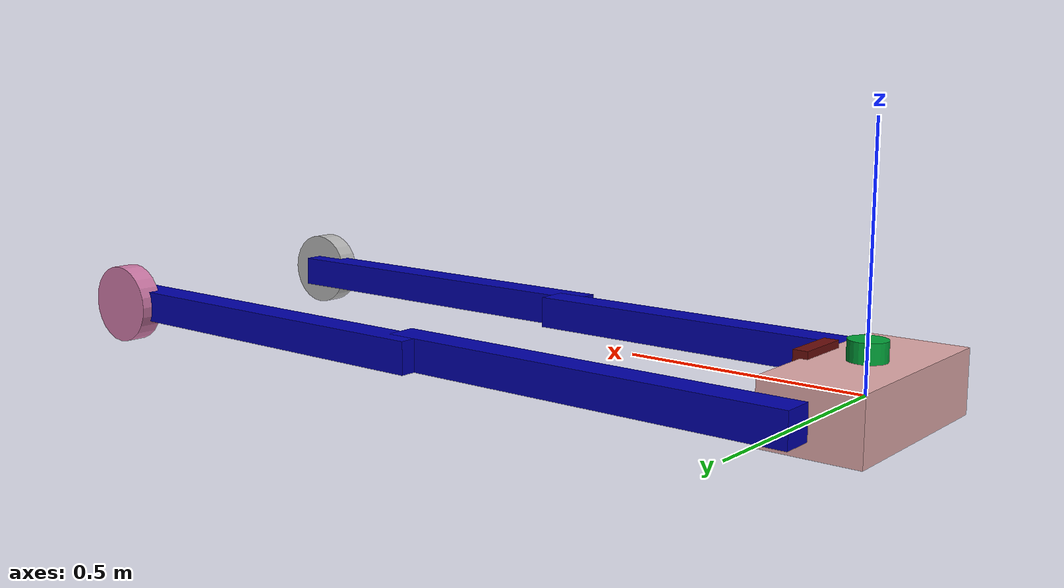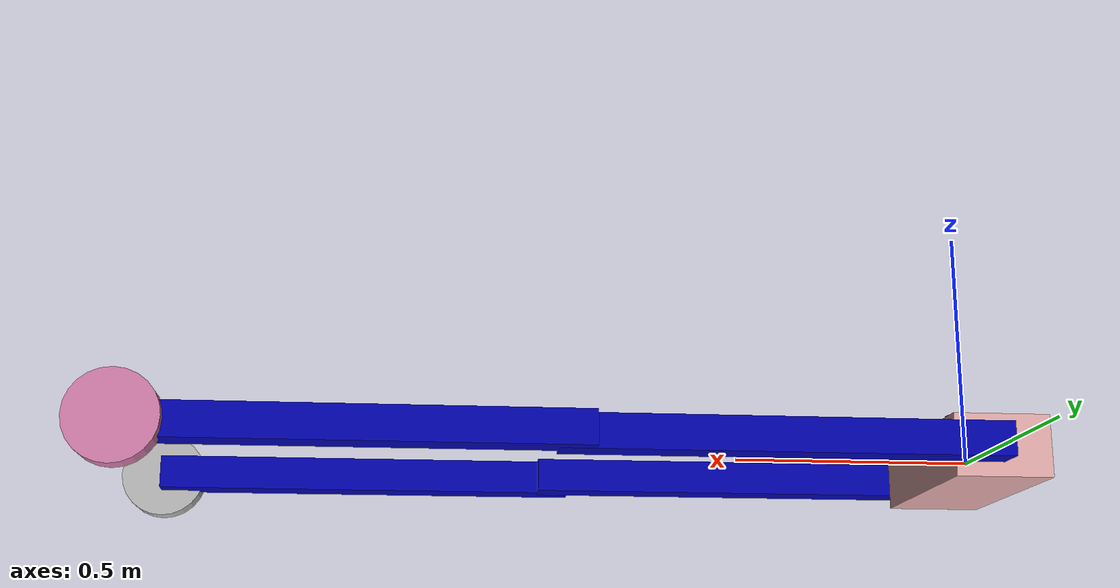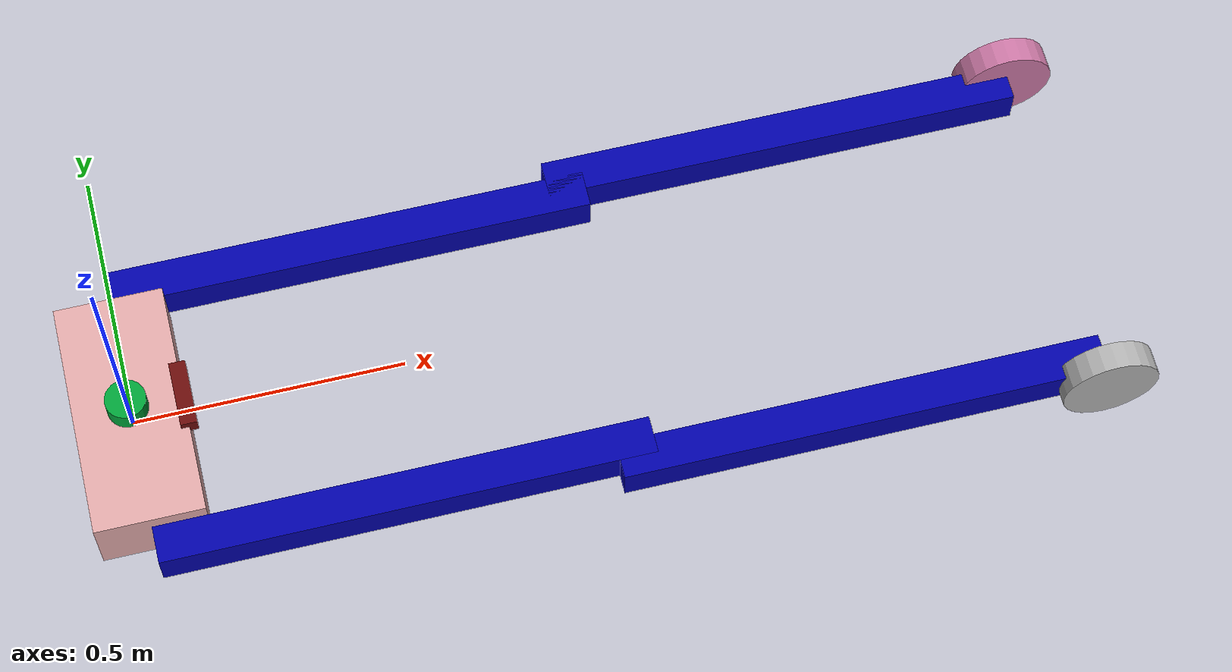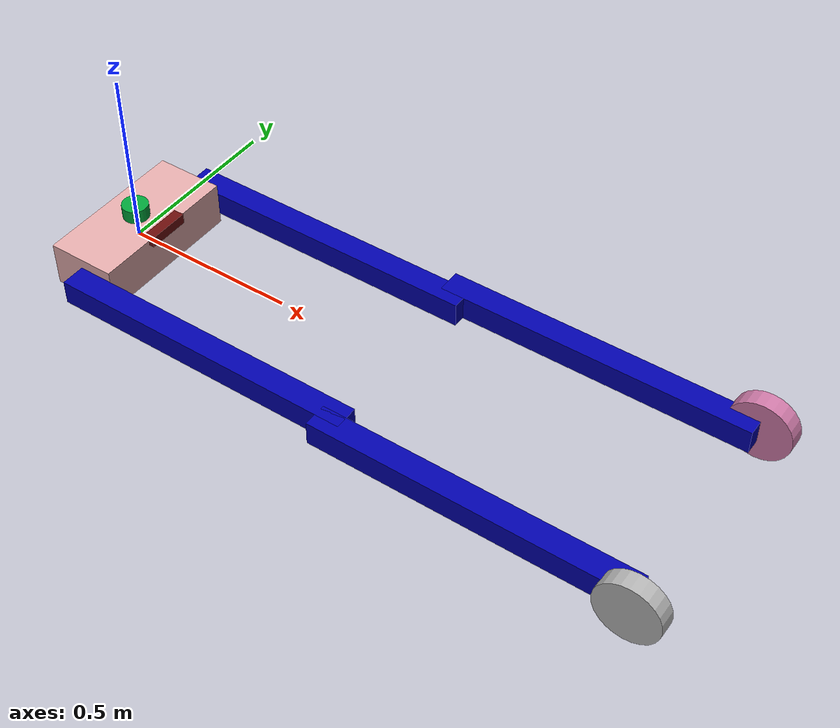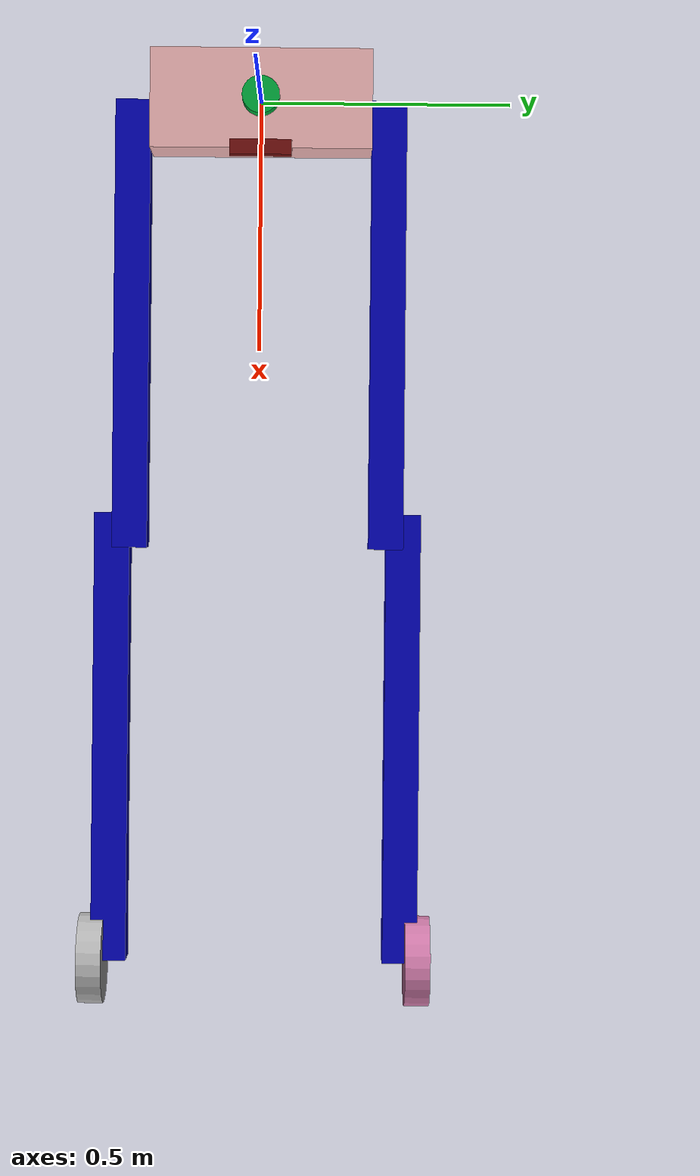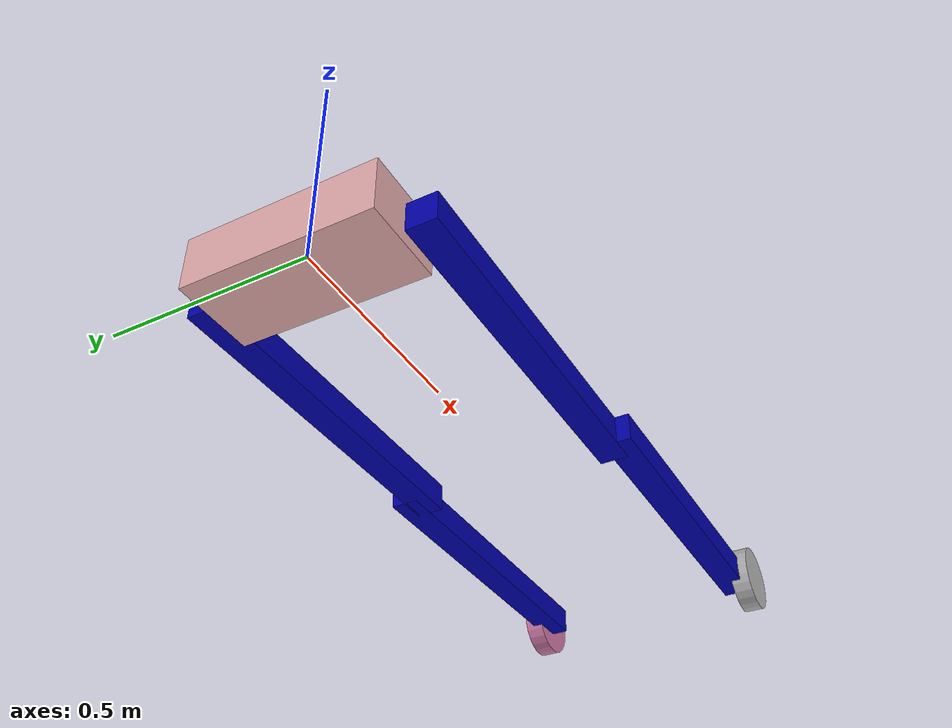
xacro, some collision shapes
<?xml version="1.0"?>
<robot name="arc" xmlns:xacro="http://ros.org/wiki/xacro">

    <!-- INCLUDE -->
    <xacro:include filename="$(find arc_description)/urdf/declaration.urdf.xacro" />
    <xacro:include filename="$(find arc_description)/urdf/mechanic_part/thigh.urdf.xacro" />
    <xacro:include filename="$(find arc_description)/urdf/mechanic_part/knee.urdf.xacro" />
    <xacro:include filename="$(find arc_description)/urdf/mechanic_part/base.urdf.xacro" />
    <xacro:include filename="$(find arc_description)/urdf/mechanic_part/wheel.urdf.xacro" />
    <xacro:include filename="$(find arc_description)/urdf/sensors/plugins.urdf.xacro" />
    <xacro:include filename="$(find arc_description)/urdf/sensors/imu.urdf.xacro" />
    <xacro:include filename="$(find arc_description)/urdf/sensors/lidar.urdf.xacro" />
    <xacro:include filename="$(find arc_description)/urdf/sensors/camera.urdf.xacro" />
    <xacro:include filename="$(find arc_description)/urdf/controller/ros2_control.urdf.xacro" />
    <xacro:include filename="$(find arc_description)/urdf/controller/diff_drive.urdf.xacro" />

    <!-- FUNCTION(SETUP) -->
    <xacro:arc_ros2_control />
    <xacro:arc_diff_drive_control />
    <xacro:base
        length="${base_length}"
        width="${base_width}"
        height="${base_height}"
        mass="${base_mass}"
    />

    <xacro:thigh
        frame_id="left_thigh"
        parent="base_link"
        pos_x="${thigh_pos_x}"
        pos_y="${thigh_pos_y}"
        pos_z="${thigh_pos_z}"
        length="${thigh_length}"
        width="${thigh_width}"
        height="${thigh_height}"
        mass=".6" />

    <xacro:thigh
        frame_id="right_thigh"
        parent="base_link"
        pos_x="${thigh_pos_x}"
        pos_y="${-thigh_pos_y}"
        pos_z="${thigh_pos_z}"
        length="${thigh_length}"
        width="${thigh_width}"
        height="${thigh_height}"
        mass=".6" />

    <xacro:knee
        frame_id="left_knee"
        parent="left_thigh"
        pos_x="${(thigh_length+(thigh_length/2))-thigh_width}"
        pos_y="${thigh_width/2}"
        pos_z="0"
        length="${thigh_length}"
        width="${thigh_width}"
        height="${thigh_height}"
        mass=".6" />

    <xacro:knee
        frame_id="right_knee"
        parent="right_thigh"
        pos_x="${(thigh_length+(thigh_length/2))-thigh_width}"
        pos_y="${-thigh_width/2}"
        pos_z="0"
        length="${thigh_length}"
        width="${thigh_width}"
        height="${thigh_height}"
        mass=".6" />

    <xacro:wheel
        side="left"
        parent="left_knee_joint_link"
        radius="${wheel_radius}"
        width="${wheel_width}"
        pos_x="${thigh_length}"
        pos_y="${thigh_width/2}"
        pos_z="0"
        mass="${wheel_mass}"
    />

    <xacro:wheel
        side="right"
        parent="right_knee_joint_link"
        radius="${wheel_radius}"
        width="${wheel_width}"
        pos_x="${thigh_length}"
        pos_y="${-thigh_width/2}"
        pos_z="0"
        mass="${wheel_mass}"
    />

    <xacro:depth_sensor name="eye">
        <origin xyz="${base_length/2} 0 ${base_height/2}" rpy="0 0 0" />
    </xacro:depth_sensor>

    <xacro:laser
        name="lidar"
        parent ="base_link"
        update_rate="10"
        ray_count="64"
        min_angle="-1.39626340159"
        max_angle="1.39626340159"
        min_range="0.1"
        max_range="10.0"
        frame_id="lidar_link"
        topic_name="/scan">
        <origin xyz="0 0 ${(base_height/2) -  0.025 }" rpy="0 0 0" />
    </xacro:laser>
    <xacro:imu />
</robot>

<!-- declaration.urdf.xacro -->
<robot name="arc" xmlns:xacro="http://ros.org/wiki/xacro">

    <!-- DECLARATION -->

    <xacro:property name="base_length" value="0.200" />
    <xacro:property name="base_width" value="0.445" />
    <xacro:property name="base_height" value="0.129" />
    <xacro:property name="base_mass" value="10" />

    <xacro:property name="wheel_radius" value="0.09" />
    <xacro:property name="wheel_width" value="0.05" />
    <xacro:property name="wheel_mass" value=".6" />
    <xacro:property name="wheel_torque" value="20" />

    <xacro:property name="thigh_length" value="0.9" />
    <xacro:property name="thigh_width" value="0.07" />
    <xacro:property name="thigh_height" value="0.07" />
    <xacro:property name="thigh_pos_x" value="${thigh_length/2}" />
    <xacro:property name="thigh_pos_y" value="${(base_width/2) + (thigh_width/2)}" />
    <xacro:property name="thigh_pos_z" value="0" />

</robot>

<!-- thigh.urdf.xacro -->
<robot xmlns:xacro="http://ros.org/wiki/xacro">
    <xacro:macro name="thigh" params="frame_id parent pos_x pos_y pos_z length width height mass">

        <!-- LINK -->
        <link name="${frame_id}_joint_link">

            <visual>
                <!-- Geometry centered on link frame -->
                <origin xyz="${length/2} 0 0" rpy="${pi/2} 0 0" />
                <geometry>
                    <box size="${length} ${width} ${height}" />
                </geometry>
                <material name="yellow">
                    <color rgba="0.0 0.0 0.6627 1.0" />
                </material>
            </visual>

            <collision>
                <origin xyz="${length/2} 0 0" rpy="0 0 0" />
                <geometry>
                    <box size="${length} ${width} ${height}" />
                </geometry>
            </collision>

            <inertial>
                <origin xyz="${length/2} 0 0" rpy="0 0 0" />
                <mass value="${mass}" />
                <inertia
                    ixx="${(1.0/12.0) * mass * ((width*width) + (height*height))}"
                    ixy="0.0"
                    ixz="0.0"
                    iyy="${(1.0/12.0) * mass * ((length*length) + (height*height))}"
                    iyz="0.0"
                    izz="${(1.0/12.0) * mass * ((length*length) + (width*width))}" />
            </inertial>

        </link>

        <!-- GAZEBO MATERIAL (correct reference) -->
        <gazebo reference="${frame_id}_joint_link">
            <material>Gazebo/Yellow</material>
        </gazebo>

        <!-- JOINT -->
        <joint name="${frame_id}_joint" type="revolute">
            <parent link="${parent}" />
            <child link="${frame_id}_joint_link" />
            <origin xyz="${pos_x - (length/2)} ${pos_y} ${pos_z}" rpy="0 0 0" />
            <axis xyz="0 1 0" />
            <limit lower="0.0"
                upper="3.14"
                effort="100"
                velocity="5.0" />
        </joint>

    </xacro:macro>

</robot>

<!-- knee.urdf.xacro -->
<robot xmlns:xacro="http://ros.org/wiki/xacro">
    <xacro:macro name="knee" params="frame_id parent pos_x pos_y pos_z length width height mass">

        <!-- LINK -->
        <link name="${frame_id}_joint_link">

            <visual>
                <!-- Geometry centered on link frame -->
                <origin xyz="${length/2} 0 0" rpy="${pi/2} 0 0" />
                <geometry>
                    <box size="${length} ${width} ${height}" />
                </geometry>
                <material name="yellow">
                    <color rgba="0.0 0.0 0.6627 1.0" />
                </material>
            </visual>

            <collision>
                <origin xyz="${length/2} 0 0" rpy="0 0 0" />
                <geometry>
                    <box size="${length} ${width} ${height}" />
                </geometry>
            </collision>

            <inertial>
                <origin xyz="${length/2} 0 0" rpy="0 0 0" />
                <mass value="${mass}" />
                <inertia
                    ixx="${(1.0/12.0) * mass * ((width*width) + (height*height))}"
                    ixy="0.0"
                    ixz="0.0"
                    iyy="${(1.0/12.0) * mass * ((length*length) + (height*height))}"
                    iyz="0.0"
                    izz="${(1.0/12.0) * mass * ((length*length) + (width*width))}" />
            </inertial>

        </link>

        <!-- GAZEBO MATERIAL (correct reference) -->
        <gazebo reference="${frame_id}_joint_link">
            <material>Gazebo/Yellow</material>
        </gazebo>

        <!-- JOINT -->
        <joint name="${frame_id}_joint" type="revolute">
            <parent link="${parent}_joint_link" />
            <child link="${frame_id}_joint_link" />
            <origin xyz="${pos_x - (length/2)} ${pos_y} ${pos_z}" rpy="0 0 0" />
            <axis xyz="0 1 0" />
            <limit lower="-3.14"
                upper="1.57"
                effort="100"
                velocity="5.0" />
        </joint>

    </xacro:macro>

</robot>

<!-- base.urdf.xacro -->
<robot xmlns:xacro="http://ros.org/wiki/xacro">

    <xacro:macro name="base" params="length width height mass">
        <link name="base_footprint" />

        <link name="base_link">
            <visual>
                <origin xyz="0 0 0" rpy="0 0 0" />
                <geometry>
                    <box size="${length} ${width} ${height}" />
                </geometry>
                <material name="yellow">
                    <color rgba="0.8784 0.6627 0.6627 1.0" />
                </material>
            </visual>

            <collision>
                <origin xyz="0 0 0" rpy="0 0 0" />
                <geometry>
                    <box size="${length} ${width} ${height}" />
                </geometry>
            </collision>

            <inertial>
                <origin xyz="0 0 0" rpy="0 0 0" />
                <mass value="${mass}" />
                <inertia ixx="${(1/12) * mass * ((width  * width)  + (height * height))}" ixy="0.0"
                    ixz="0.0"
                    iyy="${(1/12) * mass * ((length * length) + (height * height))}" iyz="0.0"
                    izz="${(1/12) * mass * ((length * length) + (width  * width))}" />
            </inertial>
        </link>

        <gazebo reference="base_link">
            <visual>
                <material>
                    <ambient>0.8392 0.6314 0.0 1.0</ambient>
                    <diffuse>0.8392 0.6314 0.0 1.0</diffuse>
                    <specular>0.99 0.99 0.99 1.0</specular>
                    <emissive>0.0 0.0 0.0 0.0</emissive>
                </material>
            </visual>
        </gazebo>

        <joint name="base_to_footprint" type="fixed">
            <parent link="base_footprint" />
            <child link="base_link" />
            <origin xyz="0 0 0" rpy="0 0 0" />
        </joint>
    </xacro:macro>

</robot>

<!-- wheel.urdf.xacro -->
<robot xmlns:xacro="http://ros.org/wiki/xacro">

    <xacro:macro name="wheel" params="side parent radius width pos_x pos_y pos_z mass">
        <link name="${side}_wheel_link">
            <visual>
                <origin xyz="0 0 0" rpy="${pi/2} 0 0" />
                <geometry>
                    <mesh filename="file://$(find arc_description)/meshes/tire.dae" scale="4 4 4" />
                </geometry>
            </visual>

            <collision>
                <origin xyz="0 0 0" rpy="${pi/2} 0 0" />
                <geometry>
                    <cylinder radius="${radius}" length="${width}" />
                </geometry>
            </collision>

            <inertial>
                <origin xyz="0 0 0" rpy="0 0 0" />
                <mass value="${mass}" />
                <inertia ixx="${(2/5) * mass * (radius * radius)}" ixy="0" ixz="0"
                    iyy="${(2/5) * mass * (radius * radius)}" iyz="0"
                    izz="${(2/5) * mass * (radius * radius)}" />
            </inertial>
        </link>

        <gazebo reference="${side}_wheel_link">
            <visual>
                <material>gazebo/Gray</material>
            </visual>
        </gazebo>
        <joint name="${side}_wheel_joint" type="continuous">
            <axis xyz="0 1 0" />
            <parent link="${parent}" />
            <child link="${side}_wheel_link" />
            <origin xyz="${pos_x} ${pos_y} ${pos_z}" rpy="0 0 0" />
        </joint>
    </xacro:macro>
</robot>

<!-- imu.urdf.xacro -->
<robot xmlns:xacro="http://ros.org/wiki/xacro">
    <xacro:macro name="imu">
        <link name="imu_link" />

        <joint name="imu_to_base_link" type="fixed">
            <parent link="base_link" />
            <child link="imu_link" />
            <origin xyz="0 0 0" rpy="0 0 0" />
        </joint>

        <gazebo>
            <plugin filename="gz-sim-imu-system" name="gz::sim::systems::Imu">
            </plugin>
        </gazebo>

        <gazebo reference="imu_link">
            <sensor name="imu_sensor" type="imu">
                <topic>imu/data</topic>
                <update_rate>50</update_rate>
                <always_on>true</always_on>
                <visualize>true</visualize>
            </sensor>
        </gazebo>
    </xacro:macro>
</robot>

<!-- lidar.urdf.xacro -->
<robot xmlns:xacro="http://ros.org/wiki/xacro">
    <xacro:property name="M_PI" value="3.1415926535897931" />
    <xacro:macro name="laser"
        params="name parent *origin update_rate ray_count min_angle max_angle min_range max_range frame_id topic_name">
        <link name="${frame_id}">
            <visual>
                <xacro:insert_block name="origin" />
                <geometry>
                    <cylinder radius="0.0375" length="0.05" />
                </geometry>
                <material name="green">
                    <color rgba="0.003 0.639 0.223 1.0" />
                </material>
            </visual>

            <collision>
                <xacro:insert_block name="origin" />
                <geometry>
                    <cylinder radius="0.0375" length="0.05" />
                </geometry>
            </collision>

            <inertial>
                <origin xyz="0 0 0" rpy="0 0 0" />
                <mass value="0.1" />
                <inertia ixx="${(2/5) * 0.1 * (0.0375 * 0.0375)}" ixy="0" ixz="0"
                    iyy="${(2/5) * 0.1 * (0.0375 * 0.0375)}" iyz="0"
                    izz="${(2/5) * 0.1 * (0.0375 * 0.0375)}" />
            </inertial>
        </link>

        <gazebo reference="${frame_id}">
            <visual>
                <material>
                    <ambient>0.003 0.639 0.223 1.0</ambient>
                    <diffuse>0.003 0.639 0.223 1.0</diffuse>
                    <specular>0.003 0.639 0.223 1.0</specular>
                    <emissive>0.0 0.0 0.0 0.0</emissive>
                </material>
            </visual>
        </gazebo>

        <joint name="${frame_id}_to_base_link" type="fixed">
            <parent link="${parent}" />
            <child link="${frame_id}" />
            <xacro:insert_block name="origin" />
        </joint>

        <gazebo reference="${frame_id}">
            <sensor name="gpu_lidar" type="gpu_lidar">
                <topic>${topic_name}</topic>
                <gz_frame_id>${frame_id}</gz_frame_id>
                <update_rate>${update_rate}</update_rate>
                <always_on>true</always_on>
                <visualize>true</visualize>
                <lidar>
                    <scan>
                        <horizontal>
                            <samples>${ray_count}</samples>
                            <resolution>1</resolution>
                            <min_angle>${min_angle}</min_angle>
                            <max_angle>${max_angle}</max_angle>
                        </horizontal>
                        <vertical>
                            <samples>1</samples>
                            <resolution>1</resolution>
                            <min_angle>-0.2618</min_angle>
                            <max_angle>0.2618</max_angle>
                        </vertical>
                    </scan>
                    <range>
                        <min>${min_range}</min>
                        <max>${max_range}</max>
                        <resolution>0.01</resolution>
                    </range>
                </lidar>
            </sensor>
        </gazebo>
    </xacro:macro>

</robot>

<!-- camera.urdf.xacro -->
<robot xmlns:xacro="http://ros.org/wiki/xacro">

    <xacro:macro name="depth_sensor" params="name *origin">
        <link name="${name}_link">
            <visual>

                <origin xyz="0 0 0" rpy="0 0 0" />
                <geometry>
                    <box size="0.030 0.124 0.030" />
                </geometry>
                <material name="red">
                    <color rgba="0.416 0.051 0.047 1.0" />
                </material>
            </visual>

            <collision>
                <origin xyz="0 0 0" rpy="0 0 0" />
                <geometry>
                    <box size="0.030 0.124 0.030" />
                </geometry>
            </collision>

            <inertial>
                <origin xyz="0 0 0" rpy="0 0 0" />
                <mass value="0.135" />
                <inertia ixx="${(1/12) * 0.135 * ((0.124  * 0.124)  + (0.030 * 0.030))}" ixy="0.0"
                    ixz="0.0"
                    iyy="${(1/12) * 0.135 * ((0.030 * 0.030) + (0.030 * 0.030))}" iyz="0.0"
                    izz="${(1/12) * 0.135 * ((0.030 * 0.030) + (0.124  * 0.124))}" />
            </inertial>
        </link>

        <joint name="${name}_to_base_link" type="fixed">
            <parent link="base_link" />
            <child link="${name}_link" />
            <xacro:insert_block name="origin" />
        </joint>

        <link name="${name}_depth_link" />
        <joint
            name="${name}_depth_joint" type="fixed">
            <origin xyz="0 0 0" rpy="0 0 0" />
            <parent link="${name}_link" />
            <child link="${name}_depth_link" />
        </joint>

        <gazebo reference="${name}_link">
            <sensor name="${name}" type="rgbd_camera">
                <topic>${name}</topic>
                <update_rate>30.0</update_rate>
                <always_on>true</always_on>
                <visualize>true</visualize>
                <camera>
                    <optical_frame_id>${name}_depth_link</optical_frame_id>
                    <horizontal_fov>1.50098</horizontal_fov>
                    <image>
                        <width>640</width>
                        <height>480</height>
                        <format>R8G8B8</format>
                    </image>
                    <clip>
                        <near>0.3</near>
                        <far>100</far>
                    </clip>
                </camera>
            </sensor>
        </gazebo>
    </xacro:macro>

</robot>
